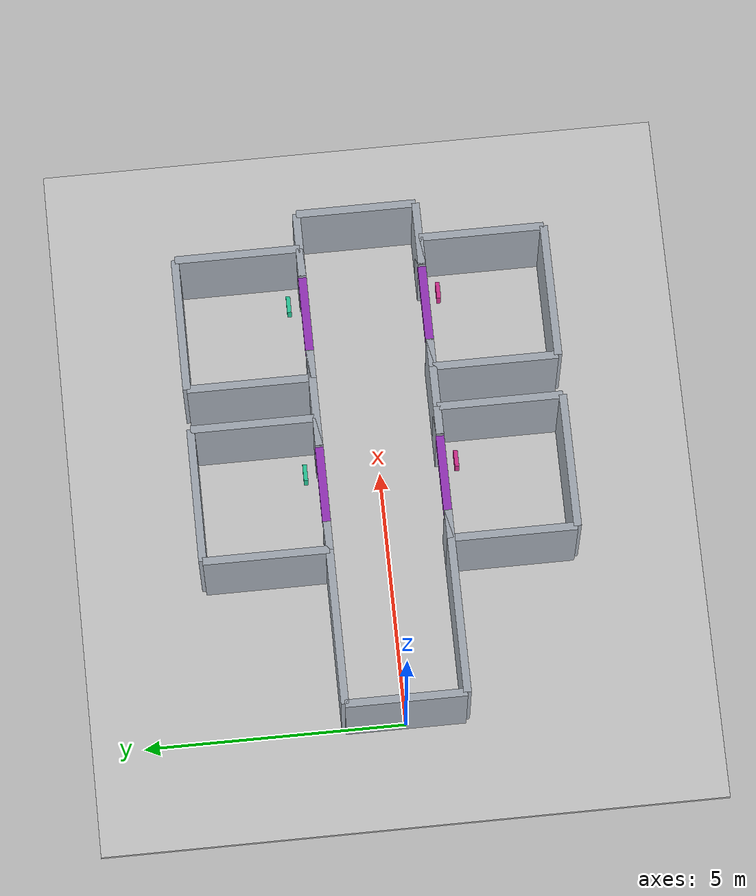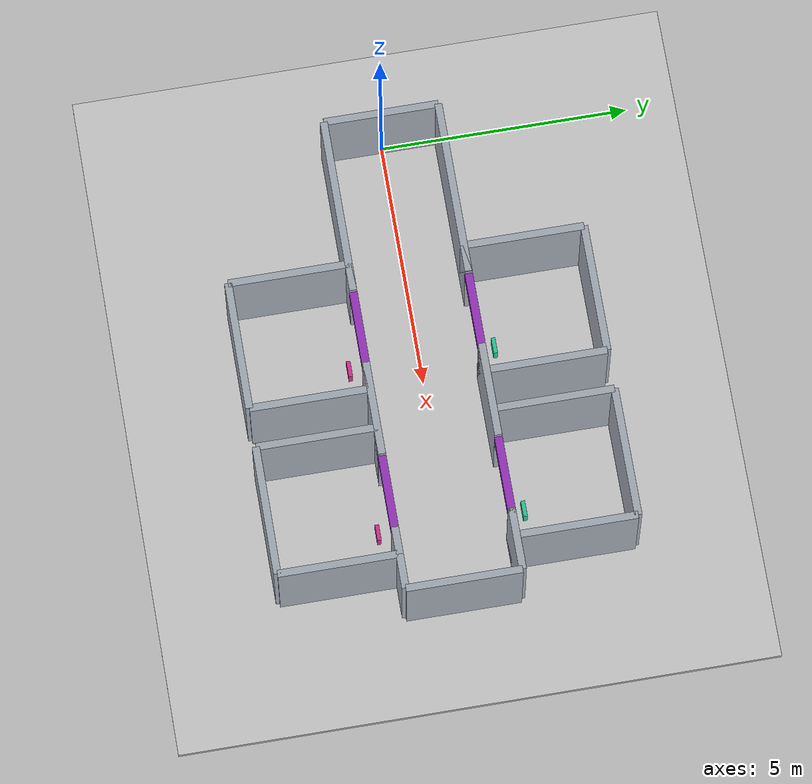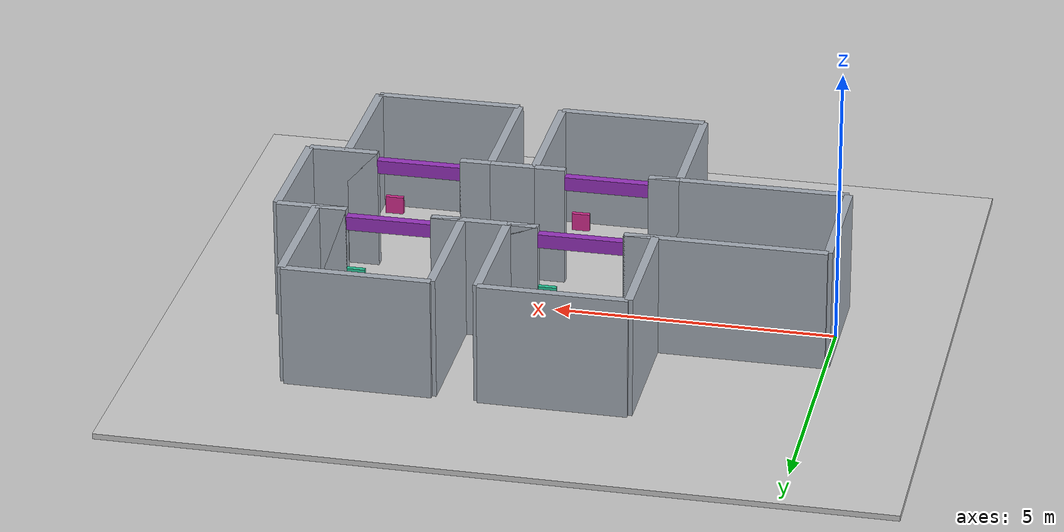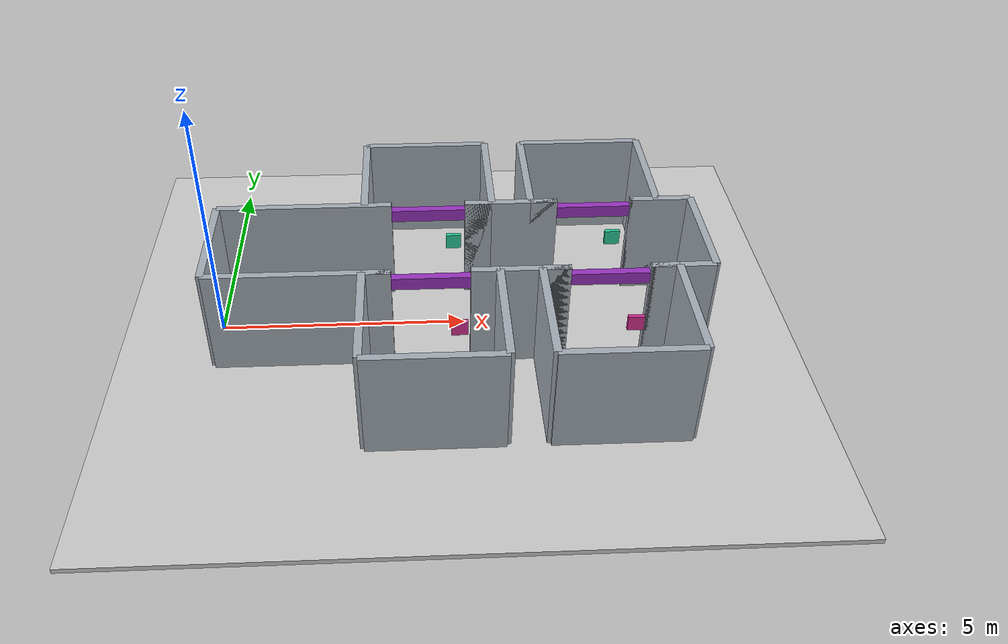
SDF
<sdf version="1.9">
  <world name="default">
    <plugin filename="gz-sim-physics-system" name="gz::sim::systems::Physics" />
    <plugin filename="gz-sim-user-commands-system" name="gz::sim::systems::UserCommands" />
    <plugin filename="gz-sim-sensors-system" name="gz::sim::systems::Sensors">
      <render_engine>ogre2</render_engine>
    </plugin>
    <plugin filename="gz-sim-imu-system" name="gz::sim::systems::Imu" />
    <plugin filename="gz-sim-contact-system" name="gz::sim::systems::Contact" />
    <physics name="3ms" type="ode">
      <max_step_size>0.003</max_step_size>
      <real_time_factor>1</real_time_factor>
    </physics>
    <light name="sun" type="directional">
      <pose>0 0 10 0 0 0</pose>
      <diffuse>0.9 0.9 0.9 1</diffuse>
      <direction>-0.5 0.1 -0.9</direction>
    </light>
    <model name="ground_plane">
      <static>true</static>
      <pose>4.85 0 -0.05 0 0 0</pose>
      <link name="body">
        <collision name="collision">
          <geometry>
            <box>
              <size>13.7 12 0.1</size>
            </box>
          </geometry>
        </collision>
        <visual name="visual">
          <geometry>
            <box>
              <size>13.7 12 0.1</size>
            </box>
          </geometry>
          <material>
            <ambient>0.8 0.8 0.8 1</ambient>
            <diffuse>0.8 0.8 0.8 1</diffuse>
          </material>
        </visual>
      </link>
    </model>
    <model name="start_wall">
      <static>true</static>
      <pose>0 0 1.1 0 0 0</pose>
      <link name="body">
        <collision name="collision">
          <geometry>
            <box>
              <size>0.15 2.3 2.2</size>
            </box>
          </geometry>
        </collision>
        <visual name="visual">
          <geometry>
            <box>
              <size>0.15 2.3 2.2</size>
            </box>
          </geometry>
          <material>
            <ambient>0.65 0.68 0.72 1</ambient>
            <diffuse>0.65 0.68 0.72 1</diffuse>
          </material>
        </visual>
      </link>
    </model>
    <model name="end_wall">
      <static>true</static>
      <pose>9.7 0 1.1 0 0 0</pose>
      <link name="body">
        <collision name="collision">
          <geometry>
            <box>
              <size>0.15 2.3 2.2</size>
            </box>
          </geometry>
        </collision>
        <visual name="visual">
          <geometry>
            <box>
              <size>0.15 2.3 2.2</size>
            </box>
          </geometry>
          <material>
            <ambient>0.65 0.68 0.72 1</ambient>
            <diffuse>0.65 0.68 0.72 1</diffuse>
          </material>
        </visual>
      </link>
    </model>
    <model name="hall_-1_1">
      <static>true</static>
      <pose>1.775 -1.15 1.1 0 0 0</pose>
      <link name="body">
        <collision name="collision">
          <geometry>
            <box>
              <size>3.55 0.15 2.2</size>
            </box>
          </geometry>
        </collision>
        <visual name="visual">
          <geometry>
            <box>
              <size>3.55 0.15 2.2</size>
            </box>
          </geometry>
          <material>
            <ambient>0.65 0.68 0.72 1</ambient>
            <diffuse>0.65 0.68 0.72 1</diffuse>
          </material>
        </visual>
      </link>
    </model>
    <model name="room_-1_1_-1">
      <static>true</static>
      <pose>3.0 -2.3499999999999996 1.1 0 0 0</pose>
      <link name="body">
        <collision name="collision">
          <geometry>
            <box>
              <size>0.15 2.4 2.2</size>
            </box>
          </geometry>
        </collision>
        <visual name="visual">
          <geometry>
            <box>
              <size>0.15 2.4 2.2</size>
            </box>
          </geometry>
          <material>
            <ambient>0.65 0.68 0.72 1</ambient>
            <diffuse>0.65 0.68 0.72 1</diffuse>
          </material>
        </visual>
      </link>
    </model>
    <model name="room_-1_1_1">
      <static>true</static>
      <pose>5.6 -2.3499999999999996 1.1 0 0 0</pose>
      <link name="body">
        <collision name="collision">
          <geometry>
            <box>
              <size>0.15 2.4 2.2</size>
            </box>
          </geometry>
        </collision>
        <visual name="visual">
          <geometry>
            <box>
              <size>0.15 2.4 2.2</size>
            </box>
          </geometry>
          <material>
            <ambient>0.65 0.68 0.72 1</ambient>
            <diffuse>0.65 0.68 0.72 1</diffuse>
          </material>
        </visual>
      </link>
    </model>
    <model name="room_end_-1_1">
      <static>true</static>
      <pose>4.3 -3.55 1.1 0 0 0</pose>
      <link name="body">
        <collision name="collision">
          <geometry>
            <box>
              <size>2.6 0.15 2.2</size>
            </box>
          </geometry>
        </collision>
        <visual name="visual">
          <geometry>
            <box>
              <size>2.6 0.15 2.2</size>
            </box>
          </geometry>
          <material>
            <ambient>0.65 0.68 0.72 1</ambient>
            <diffuse>0.65 0.68 0.72 1</diffuse>
          </material>
        </visual>
      </link>
    </model>
    <model name="jamb_-1_1_-1">
      <static>true</static>
      <pose>3.275 -1.15 1.1 0 0 0</pose>
      <link name="body">
        <collision name="collision">
          <geometry>
            <box>
              <size>0.55 0.15 2.2</size>
            </box>
          </geometry>
        </collision>
        <visual name="visual">
          <geometry>
            <box>
              <size>0.55 0.15 2.2</size>
            </box>
          </geometry>
          <material>
            <ambient>0.65 0.68 0.72 1</ambient>
            <diffuse>0.65 0.68 0.72 1</diffuse>
          </material>
        </visual>
      </link>
    </model>
    <model name="jamb_-1_1_1">
      <static>true</static>
      <pose>5.324999999999999 -1.15 1.1 0 0 0</pose>
      <link name="body">
        <collision name="collision">
          <geometry>
            <box>
              <size>0.55 0.15 2.2</size>
            </box>
          </geometry>
        </collision>
        <visual name="visual">
          <geometry>
            <box>
              <size>0.55 0.15 2.2</size>
            </box>
          </geometry>
          <material>
            <ambient>0.65 0.68 0.72 1</ambient>
            <diffuse>0.65 0.68 0.72 1</diffuse>
          </material>
        </visual>
      </link>
    </model>
    <model name="hall_-1_2">
      <static>true</static>
      <pose>6.0 -1.15 1.1 0 0 0</pose>
      <link name="body">
        <collision name="collision">
          <geometry>
            <box>
              <size>1.9000000000000004 0.15 2.2</size>
            </box>
          </geometry>
        </collision>
        <visual name="visual">
          <geometry>
            <box>
              <size>1.9000000000000004 0.15 2.2</size>
            </box>
          </geometry>
          <material>
            <ambient>0.65 0.68 0.72 1</ambient>
            <diffuse>0.65 0.68 0.72 1</diffuse>
          </material>
        </visual>
      </link>
    </model>
    <model name="room_-1_2_-1">
      <static>true</static>
      <pose>6.4 -2.3499999999999996 1.1 0 0 0</pose>
      <link name="body">
        <collision name="collision">
          <geometry>
            <box>
              <size>0.15 2.4 2.2</size>
            </box>
          </geometry>
        </collision>
        <visual name="visual">
          <geometry>
            <box>
              <size>0.15 2.4 2.2</size>
            </box>
          </geometry>
          <material>
            <ambient>0.65 0.68 0.72 1</ambient>
            <diffuse>0.65 0.68 0.72 1</diffuse>
          </material>
        </visual>
      </link>
    </model>
    <model name="room_-1_2_1">
      <static>true</static>
      <pose>9.0 -2.3499999999999996 1.1 0 0 0</pose>
      <link name="body">
        <collision name="collision">
          <geometry>
            <box>
              <size>0.15 2.4 2.2</size>
            </box>
          </geometry>
        </collision>
        <visual name="visual">
          <geometry>
            <box>
              <size>0.15 2.4 2.2</size>
            </box>
          </geometry>
          <material>
            <ambient>0.65 0.68 0.72 1</ambient>
            <diffuse>0.65 0.68 0.72 1</diffuse>
          </material>
        </visual>
      </link>
    </model>
    <model name="room_end_-1_2">
      <static>true</static>
      <pose>7.7 -3.55 1.1 0 0 0</pose>
      <link name="body">
        <collision name="collision">
          <geometry>
            <box>
              <size>2.6 0.15 2.2</size>
            </box>
          </geometry>
        </collision>
        <visual name="visual">
          <geometry>
            <box>
              <size>2.6 0.15 2.2</size>
            </box>
          </geometry>
          <material>
            <ambient>0.65 0.68 0.72 1</ambient>
            <diffuse>0.65 0.68 0.72 1</diffuse>
          </material>
        </visual>
      </link>
    </model>
    <model name="jamb_-1_2_-1">
      <static>true</static>
      <pose>6.675000000000001 -1.15 1.1 0 0 0</pose>
      <link name="body">
        <collision name="collision">
          <geometry>
            <box>
              <size>0.55 0.15 2.2</size>
            </box>
          </geometry>
        </collision>
        <visual name="visual">
          <geometry>
            <box>
              <size>0.55 0.15 2.2</size>
            </box>
          </geometry>
          <material>
            <ambient>0.65 0.68 0.72 1</ambient>
            <diffuse>0.65 0.68 0.72 1</diffuse>
          </material>
        </visual>
      </link>
    </model>
    <model name="jamb_-1_2_1">
      <static>true</static>
      <pose>8.725 -1.15 1.1 0 0 0</pose>
      <link name="body">
        <collision name="collision">
          <geometry>
            <box>
              <size>0.55 0.15 2.2</size>
            </box>
          </geometry>
        </collision>
        <visual name="visual">
          <geometry>
            <box>
              <size>0.55 0.15 2.2</size>
            </box>
          </geometry>
          <material>
            <ambient>0.65 0.68 0.72 1</ambient>
            <diffuse>0.65 0.68 0.72 1</diffuse>
          </material>
        </visual>
      </link>
    </model>
    <model name="hall_end_-1">
      <static>true</static>
      <pose>9.075 -1.15 1.1 0 0 0</pose>
      <link name="body">
        <collision name="collision">
          <geometry>
            <box>
              <size>1.25 0.15 2.2</size>
            </box>
          </geometry>
        </collision>
        <visual name="visual">
          <geometry>
            <box>
              <size>1.25 0.15 2.2</size>
            </box>
          </geometry>
          <material>
            <ambient>0.65 0.68 0.72 1</ambient>
            <diffuse>0.65 0.68 0.72 1</diffuse>
          </material>
        </visual>
      </link>
    </model>
    <model name="hall_1_1">
      <static>true</static>
      <pose>1.775 1.15 1.1 0 0 0</pose>
      <link name="body">
        <collision name="collision">
          <geometry>
            <box>
              <size>3.55 0.15 2.2</size>
            </box>
          </geometry>
        </collision>
        <visual name="visual">
          <geometry>
            <box>
              <size>3.55 0.15 2.2</size>
            </box>
          </geometry>
          <material>
            <ambient>0.65 0.68 0.72 1</ambient>
            <diffuse>0.65 0.68 0.72 1</diffuse>
          </material>
        </visual>
      </link>
    </model>
    <model name="room_1_1_-1">
      <static>true</static>
      <pose>3.0 2.3499999999999996 1.1 0 0 0</pose>
      <link name="body">
        <collision name="collision">
          <geometry>
            <box>
              <size>0.15 2.4 2.2</size>
            </box>
          </geometry>
        </collision>
        <visual name="visual">
          <geometry>
            <box>
              <size>0.15 2.4 2.2</size>
            </box>
          </geometry>
          <material>
            <ambient>0.65 0.68 0.72 1</ambient>
            <diffuse>0.65 0.68 0.72 1</diffuse>
          </material>
        </visual>
      </link>
    </model>
    <model name="room_1_1_1">
      <static>true</static>
      <pose>5.6 2.3499999999999996 1.1 0 0 0</pose>
      <link name="body">
        <collision name="collision">
          <geometry>
            <box>
              <size>0.15 2.4 2.2</size>
            </box>
          </geometry>
        </collision>
        <visual name="visual">
          <geometry>
            <box>
              <size>0.15 2.4 2.2</size>
            </box>
          </geometry>
          <material>
            <ambient>0.65 0.68 0.72 1</ambient>
            <diffuse>0.65 0.68 0.72 1</diffuse>
          </material>
        </visual>
      </link>
    </model>
    <model name="room_end_1_1">
      <static>true</static>
      <pose>4.3 3.55 1.1 0 0 0</pose>
      <link name="body">
        <collision name="collision">
          <geometry>
            <box>
              <size>2.6 0.15 2.2</size>
            </box>
          </geometry>
        </collision>
        <visual name="visual">
          <geometry>
            <box>
              <size>2.6 0.15 2.2</size>
            </box>
          </geometry>
          <material>
            <ambient>0.65 0.68 0.72 1</ambient>
            <diffuse>0.65 0.68 0.72 1</diffuse>
          </material>
        </visual>
      </link>
    </model>
    <model name="jamb_1_1_-1">
      <static>true</static>
      <pose>3.275 1.15 1.1 0 0 0</pose>
      <link name="body">
        <collision name="collision">
          <geometry>
            <box>
              <size>0.55 0.15 2.2</size>
            </box>
          </geometry>
        </collision>
        <visual name="visual">
          <geometry>
            <box>
              <size>0.55 0.15 2.2</size>
            </box>
          </geometry>
          <material>
            <ambient>0.65 0.68 0.72 1</ambient>
            <diffuse>0.65 0.68 0.72 1</diffuse>
          </material>
        </visual>
      </link>
    </model>
    <model name="jamb_1_1_1">
      <static>true</static>
      <pose>5.324999999999999 1.15 1.1 0 0 0</pose>
      <link name="body">
        <collision name="collision">
          <geometry>
            <box>
              <size>0.55 0.15 2.2</size>
            </box>
          </geometry>
        </collision>
        <visual name="visual">
          <geometry>
            <box>
              <size>0.55 0.15 2.2</size>
            </box>
          </geometry>
          <material>
            <ambient>0.65 0.68 0.72 1</ambient>
            <diffuse>0.65 0.68 0.72 1</diffuse>
          </material>
        </visual>
      </link>
    </model>
    <model name="hall_1_2">
      <static>true</static>
      <pose>6.0 1.15 1.1 0 0 0</pose>
      <link name="body">
        <collision name="collision">
          <geometry>
            <box>
              <size>1.9000000000000004 0.15 2.2</size>
            </box>
          </geometry>
        </collision>
        <visual name="visual">
          <geometry>
            <box>
              <size>1.9000000000000004 0.15 2.2</size>
            </box>
          </geometry>
          <material>
            <ambient>0.65 0.68 0.72 1</ambient>
            <diffuse>0.65 0.68 0.72 1</diffuse>
          </material>
        </visual>
      </link>
    </model>
    <model name="room_1_2_-1">
      <static>true</static>
      <pose>6.4 2.3499999999999996 1.1 0 0 0</pose>
      <link name="body">
        <collision name="collision">
          <geometry>
            <box>
              <size>0.15 2.4 2.2</size>
            </box>
          </geometry>
        </collision>
        <visual name="visual">
          <geometry>
            <box>
              <size>0.15 2.4 2.2</size>
            </box>
          </geometry>
          <material>
            <ambient>0.65 0.68 0.72 1</ambient>
            <diffuse>0.65 0.68 0.72 1</diffuse>
          </material>
        </visual>
      </link>
    </model>
    <model name="room_1_2_1">
      <static>true</static>
      <pose>9.0 2.3499999999999996 1.1 0 0 0</pose>
      <link name="body">
        <collision name="collision">
          <geometry>
            <box>
              <size>0.15 2.4 2.2</size>
            </box>
          </geometry>
        </collision>
        <visual name="visual">
          <geometry>
            <box>
              <size>0.15 2.4 2.2</size>
            </box>
          </geometry>
          <material>
            <ambient>0.65 0.68 0.72 1</ambient>
            <diffuse>0.65 0.68 0.72 1</diffuse>
          </material>
        </visual>
      </link>
    </model>
    <model name="room_end_1_2">
      <static>true</static>
      <pose>7.7 3.55 1.1 0 0 0</pose>
      <link name="body">
        <collision name="collision">
          <geometry>
            <box>
              <size>2.6 0.15 2.2</size>
            </box>
          </geometry>
        </collision>
        <visual name="visual">
          <geometry>
            <box>
              <size>2.6 0.15 2.2</size>
            </box>
          </geometry>
          <material>
            <ambient>0.65 0.68 0.72 1</ambient>
            <diffuse>0.65 0.68 0.72 1</diffuse>
          </material>
        </visual>
      </link>
    </model>
    <model name="jamb_1_2_-1">
      <static>true</static>
      <pose>6.675000000000001 1.15 1.1 0 0 0</pose>
      <link name="body">
        <collision name="collision">
          <geometry>
            <box>
              <size>0.55 0.15 2.2</size>
            </box>
          </geometry>
        </collision>
        <visual name="visual">
          <geometry>
            <box>
              <size>0.55 0.15 2.2</size>
            </box>
          </geometry>
          <material>
            <ambient>0.65 0.68 0.72 1</ambient>
            <diffuse>0.65 0.68 0.72 1</diffuse>
          </material>
        </visual>
      </link>
    </model>
    <model name="jamb_1_2_1">
      <static>true</static>
      <pose>8.725 1.15 1.1 0 0 0</pose>
      <link name="body">
        <collision name="collision">
          <geometry>
            <box>
              <size>0.55 0.15 2.2</size>
            </box>
          </geometry>
        </collision>
        <visual name="visual">
          <geometry>
            <box>
              <size>0.55 0.15 2.2</size>
            </box>
          </geometry>
          <material>
            <ambient>0.65 0.68 0.72 1</ambient>
            <diffuse>0.65 0.68 0.72 1</diffuse>
          </material>
        </visual>
      </link>
    </model>
    <model name="hall_end_1">
      <static>true</static>
      <pose>9.075 1.15 1.1 0 0 0</pose>
      <link name="body">
        <collision name="collision">
          <geometry>
            <box>
              <size>1.25 0.15 2.2</size>
            </box>
          </geometry>
        </collision>
        <visual name="visual">
          <geometry>
            <box>
              <size>1.25 0.15 2.2</size>
            </box>
          </geometry>
          <material>
            <ambient>0.65 0.68 0.72 1</ambient>
            <diffuse>0.65 0.68 0.72 1</diffuse>
          </material>
        </visual>
      </link>
    </model>
    <model name="r3geo_base_r006_right_1_lintel">
      <static>true</static>
      <pose>4.3 -1.15 1.95 0 0 0</pose>
      <link name="body">
        <collision name="collision">
          <geometry>
            <box>
              <size>1.5 0.16 0.25</size>
            </box>
          </geometry>
        </collision>
        <visual name="visual">
          <geometry>
            <box>
              <size>1.5 0.16 0.25</size>
            </box>
          </geometry>
          <material>
            <ambient>0.6 0.2 0.75 1</ambient>
            <diffuse>0.6 0.2 0.75 1</diffuse>
          </material>
        </visual>
      </link>
    </model>
    <model name="r3geo_base_r006_right_1_entrance_sign">
      <static>true</static>
      <pose>4.83 -1.45 1.05 0 0 0</pose>
      <link name="body">
        <visual name="visual">
          <geometry>
            <box>
              <size>0.32 0.08 0.32</size>
            </box>
          </geometry>
          <material>
            <ambient>0.84 0.18 0.57 1</ambient>
            <diffuse>0.84 0.18 0.57 1</diffuse>
          </material>
        </visual>
      </link>
    </model>
    <model name="r3geo_base_r006_right_2_lintel">
      <static>true</static>
      <pose>7.7 -1.15 1.95 0 0 0</pose>
      <link name="body">
        <collision name="collision">
          <geometry>
            <box>
              <size>1.5 0.16 0.25</size>
            </box>
          </geometry>
        </collision>
        <visual name="visual">
          <geometry>
            <box>
              <size>1.5 0.16 0.25</size>
            </box>
          </geometry>
          <material>
            <ambient>0.6 0.2 0.75 1</ambient>
            <diffuse>0.6 0.2 0.75 1</diffuse>
          </material>
        </visual>
      </link>
    </model>
    <model name="r3geo_base_r006_right_2_entrance_sign">
      <static>true</static>
      <pose>8.23 -1.45 1.05 0 0 0</pose>
      <link name="body">
        <visual name="visual">
          <geometry>
            <box>
              <size>0.32 0.08 0.32</size>
            </box>
          </geometry>
          <material>
            <ambient>0.84 0.18 0.57 1</ambient>
            <diffuse>0.84 0.18 0.57 1</diffuse>
          </material>
        </visual>
      </link>
    </model>
    <model name="r3geo_base_r006_left_1_lintel">
      <static>true</static>
      <pose>4.3 1.15 1.95 0 0 0</pose>
      <link name="body">
        <collision name="collision">
          <geometry>
            <box>
              <size>1.5 0.16 0.25</size>
            </box>
          </geometry>
        </collision>
        <visual name="visual">
          <geometry>
            <box>
              <size>1.5 0.16 0.25</size>
            </box>
          </geometry>
          <material>
            <ambient>0.6 0.2 0.75 1</ambient>
            <diffuse>0.6 0.2 0.75 1</diffuse>
          </material>
        </visual>
      </link>
    </model>
    <model name="r3geo_base_r006_left_1_entrance_sign">
      <static>true</static>
      <pose>4.83 1.45 1.05 0 0 0</pose>
      <link name="body">
        <visual name="visual">
          <geometry>
            <box>
              <size>0.32 0.08 0.32</size>
            </box>
          </geometry>
          <material>
            <ambient>0.16 0.8 0.61 1</ambient>
            <diffuse>0.16 0.8 0.61 1</diffuse>
          </material>
        </visual>
      </link>
    </model>
    <model name="r3geo_base_r006_left_2_lintel">
      <static>true</static>
      <pose>7.7 1.15 1.95 0 0 0</pose>
      <link name="body">
        <collision name="collision">
          <geometry>
            <box>
              <size>1.5 0.16 0.25</size>
            </box>
          </geometry>
        </collision>
        <visual name="visual">
          <geometry>
            <box>
              <size>1.5 0.16 0.25</size>
            </box>
          </geometry>
          <material>
            <ambient>0.6 0.2 0.75 1</ambient>
            <diffuse>0.6 0.2 0.75 1</diffuse>
          </material>
        </visual>
      </link>
    </model>
    <model name="r3geo_base_r006_left_2_entrance_sign">
      <static>true</static>
      <pose>8.23 1.45 1.05 0 0 0</pose>
      <link name="body">
        <visual name="visual">
          <geometry>
            <box>
              <size>0.32 0.08 0.32</size>
            </box>
          </geometry>
          <material>
            <ambient>0.16 0.8 0.61 1</ambient>
            <diffuse>0.16 0.8 0.61 1</diffuse>
          </material>
        </visual>
      </link>
    </model>
  </world>
</sdf>
